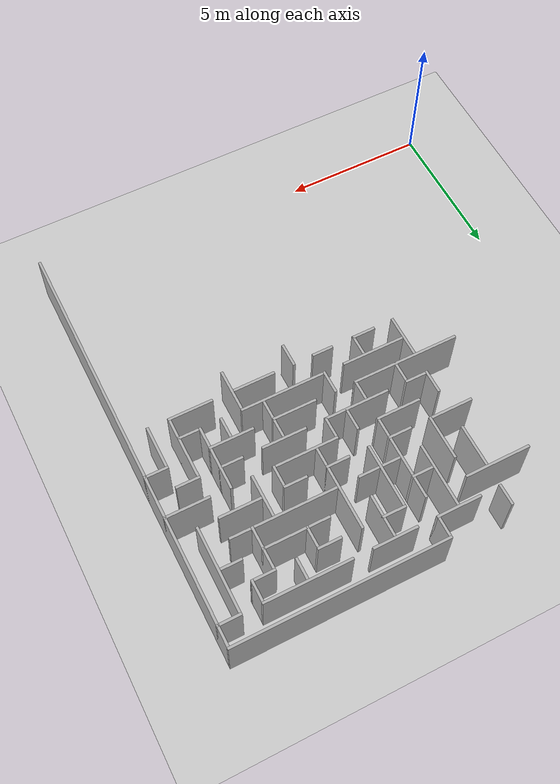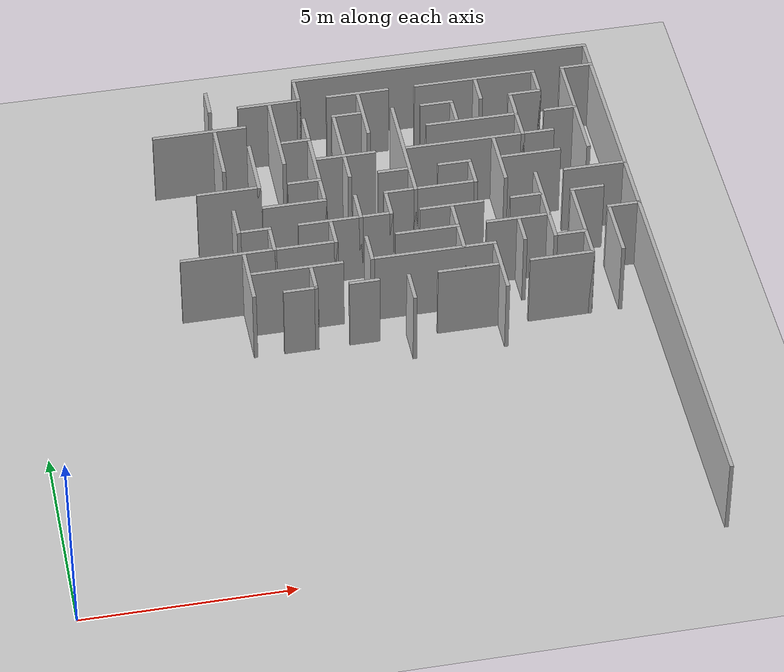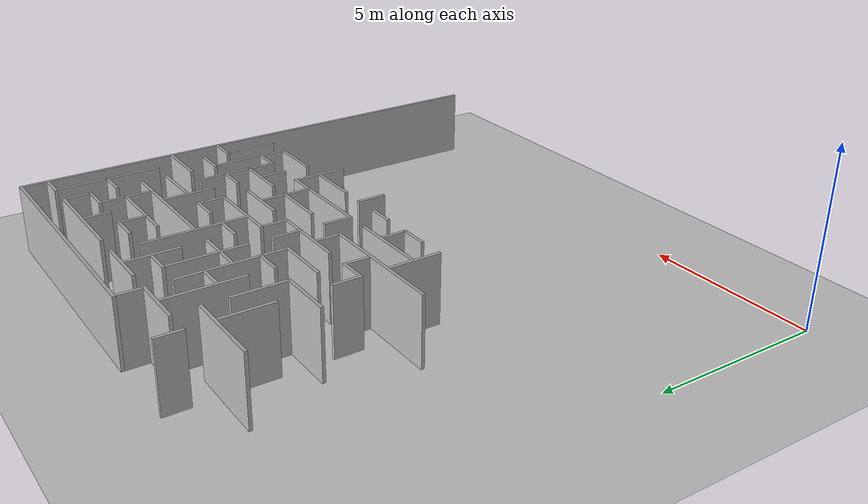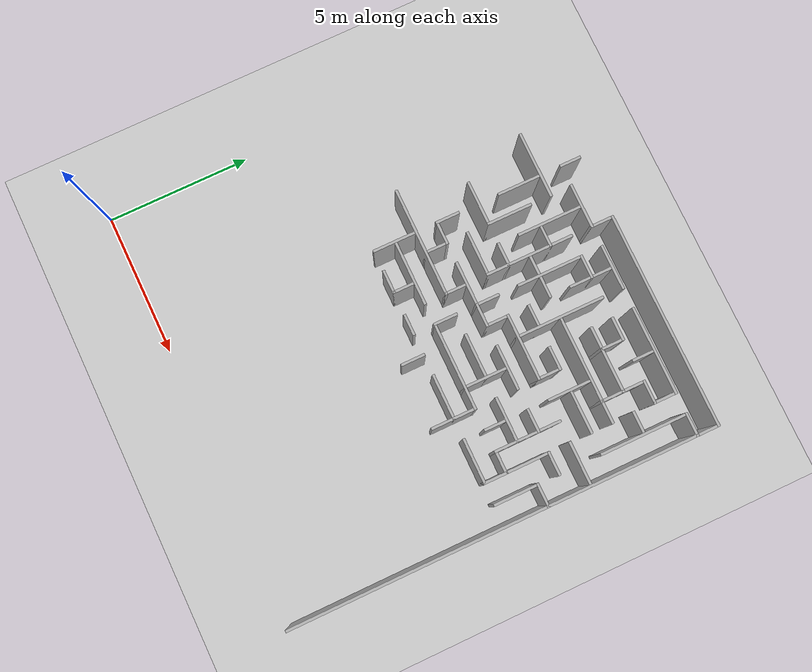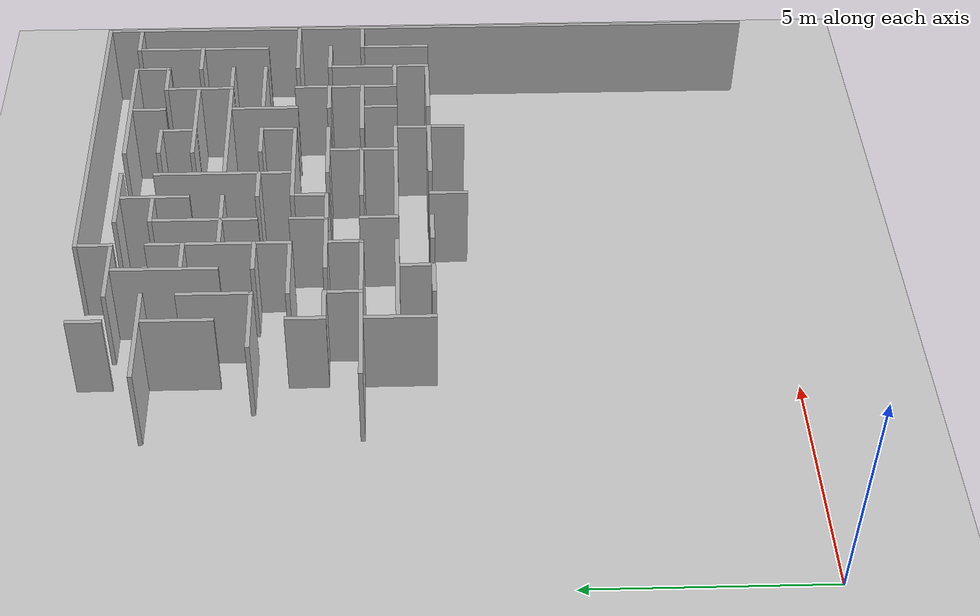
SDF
<sdf version="1.6">
 <world name="slam_world">
  <model name="ground_plane">
   <static>true</static>
   <link name="link">
    <collision name="collision">
     <geometry><plane><normal>0 0 1</normal><size>100 100</size></plane></geometry>
    </collision>
    <visual name="visual">
     <geometry><plane><normal>0 0 1</normal><size>100 100</size></plane></geometry>
     <material>
      <ambient>0.8 0.8 0.8 1</ambient>
      <diffuse>0.8 0.8 0.8 1</diffuse>
      <specular>0.8 0.8 0.8 1</specular>
     </material>
    </visual>
   </link>
  </model>
  <model name="wall_1">
   <static>true</static>
   <pose>11.203703703703704 14.907407407407408 1.0 0 0 0</pose>
   <link name="link">
    <collision name="collision">
     <geometry><box><size>7.500000000000001 0.0925925925925926 2.0</size></box></geometry>
    </collision>
    <visual name="visual">
     <geometry><box><size>7.500000000000001 0.0925925925925926 2.0</size></box></geometry>
     <material><ambient>0.5 0.5 0.5 1</ambient><diffuse>0.7 0.7 0.7 1</diffuse></material>
    </visual>
   </link>
  </model>
  <model name="wall_4">
   <static>true</static>
   <pose>5.277777777777779 14.490740740740742 1.0 0 0 0</pose>
   <link name="link">
    <collision name="collision">
     <geometry><box><size>0.0925925925925926 0.7407407407407408 2.0</size></box></geometry>
    </collision>
    <visual name="visual">
     <geometry><box><size>0.0925925925925926 0.7407407407407408 2.0</size></box></geometry>
     <material><ambient>0.5 0.5 0.5 1</ambient><diffuse>0.7 0.7 0.7 1</diffuse></material>
    </visual>
   </link>
  </model>
  <model name="wall_5">
   <static>true</static>
   <pose>7.500000000000001 14.490740740740742 1.0 0 0 0</pose>
   <link name="link">
    <collision name="collision">
     <geometry><box><size>0.0925925925925926 0.7407407407407408 2.0</size></box></geometry>
    </collision>
    <visual name="visual">
     <geometry><box><size>0.0925925925925926 0.7407407407407408 2.0</size></box></geometry>
     <material><ambient>0.5 0.5 0.5 1</ambient><diffuse>0.7 0.7 0.7 1</diffuse></material>
    </visual>
   </link>
  </model>
  <model name="wall_6">
   <static>true</static>
   <pose>14.907407407407408 7.453703703703704 1.0 0 0 0</pose>
   <link name="link">
    <collision name="collision">
     <geometry><box><size>0.0925925925925926 14.814814814814817 2.0</size></box></geometry>
    </collision>
    <visual name="visual">
     <geometry><box><size>0.0925925925925926 14.814814814814817 2.0</size></box></geometry>
     <material><ambient>0.5 0.5 0.5 1</ambient><diffuse>0.7 0.7 0.7 1</diffuse></material>
    </visual>
   </link>
  </model>
  <model name="wall_9">
   <static>true</static>
   <pose>6.7592592592592595 14.166666666666668 1.0 0 0 0</pose>
   <link name="link">
    <collision name="collision">
     <geometry><box><size>1.5740740740740742 0.0925925925925926 2.0</size></box></geometry>
    </collision>
    <visual name="visual">
     <geometry><box><size>1.5740740740740742 0.0925925925925926 2.0</size></box></geometry>
     <material><ambient>0.5 0.5 0.5 1</ambient><diffuse>0.7 0.7 0.7 1</diffuse></material>
    </visual>
   </link>
  </model>
  <model name="wall_10">
   <static>true</static>
   <pose>8.981481481481483 14.166666666666668 1.0 0 0 0</pose>
   <link name="link">
    <collision name="collision">
     <geometry><box><size>1.5740740740740742 0.0925925925925926 2.0</size></box></geometry>
    </collision>
    <visual name="visual">
     <geometry><box><size>1.5740740740740742 0.0925925925925926 2.0</size></box></geometry>
     <material><ambient>0.5 0.5 0.5 1</ambient><diffuse>0.7 0.7 0.7 1</diffuse></material>
    </visual>
   </link>
  </model>
  <model name="wall_11">
   <static>true</static>
   <pose>11.944444444444446 14.166666666666668 1.0 0 0 0</pose>
   <link name="link">
    <collision name="collision">
     <geometry><box><size>3.055555555555556 0.0925925925925926 2.0</size></box></geometry>
    </collision>
    <visual name="visual">
     <geometry><box><size>3.055555555555556 0.0925925925925926 2.0</size></box></geometry>
     <material><ambient>0.5 0.5 0.5 1</ambient><diffuse>0.7 0.7 0.7 1</diffuse></material>
    </visual>
   </link>
  </model>
  <model name="wall_12">
   <static>true</static>
   <pose>14.537037037037038 14.166666666666668 1.0 0 0 0</pose>
   <link name="link">
    <collision name="collision">
     <geometry><box><size>0.8333333333333334 0.0925925925925926 2.0</size></box></geometry>
    </collision>
    <visual name="visual">
     <geometry><box><size>0.8333333333333334 0.0925925925925926 2.0</size></box></geometry>
     <material><ambient>0.5 0.5 0.5 1</ambient><diffuse>0.7 0.7 0.7 1</diffuse></material>
    </visual>
   </link>
  </model>
  <model name="wall_15">
   <static>true</static>
   <pose>6.7592592592592595 13.009259259259261 1.0 0 0 0</pose>
   <link name="link">
    <collision name="collision">
     <geometry><box><size>0.0925925925925926 2.2222222222222223 2.0</size></box></geometry>
    </collision>
    <visual name="visual">
     <geometry><box><size>0.0925925925925926 2.2222222222222223 2.0</size></box></geometry>
     <material><ambient>0.5 0.5 0.5 1</ambient><diffuse>0.7 0.7 0.7 1</diffuse></material>
    </visual>
   </link>
  </model>
  <model name="wall_16">
   <static>true</static>
   <pose>8.981481481481483 13.379629629629632 1.0 0 0 0</pose>
   <link name="link">
    <collision name="collision">
     <geometry><box><size>0.0925925925925926 1.4814814814814816 2.0</size></box></geometry>
    </collision>
    <visual name="visual">
     <geometry><box><size>0.0925925925925926 1.4814814814814816 2.0</size></box></geometry>
     <material><ambient>0.5 0.5 0.5 1</ambient><diffuse>0.7 0.7 0.7 1</diffuse></material>
    </visual>
   </link>
  </model>
  <model name="wall_17">
   <static>true</static>
   <pose>11.944444444444446 13.750000000000002 1.0 0 0 0</pose>
   <link name="link">
    <collision name="collision">
     <geometry><box><size>0.0925925925925926 0.7407407407407408 2.0</size></box></geometry>
    </collision>
    <visual name="visual">
     <geometry><box><size>0.0925925925925926 0.7407407407407408 2.0</size></box></geometry>
     <material><ambient>0.5 0.5 0.5 1</ambient><diffuse>0.7 0.7 0.7 1</diffuse></material>
    </visual>
   </link>
  </model>
  <model name="wall_18">
   <static>true</static>
   <pose>13.425925925925927 13.750000000000002 1.0 0 0 0</pose>
   <link name="link">
    <collision name="collision">
     <geometry><box><size>0.0925925925925926 0.7407407407407408 2.0</size></box></geometry>
    </collision>
    <visual name="visual">
     <geometry><box><size>0.0925925925925926 0.7407407407407408 2.0</size></box></geometry>
     <material><ambient>0.5 0.5 0.5 1</ambient><diffuse>0.7 0.7 0.7 1</diffuse></material>
    </visual>
   </link>
  </model>
  <model name="wall_19">
   <static>true</static>
   <pose>14.166666666666668 12.63888888888889 1.0 0 0 0</pose>
   <link name="link">
    <collision name="collision">
     <geometry><box><size>0.0925925925925926 2.9629629629629632 2.0</size></box></geometry>
    </collision>
    <visual name="visual">
     <geometry><box><size>0.0925925925925926 2.9629629629629632 2.0</size></box></geometry>
     <material><ambient>0.5 0.5 0.5 1</ambient><diffuse>0.7 0.7 0.7 1</diffuse></material>
    </visual>
   </link>
  </model>
  <model name="wall_21">
   <static>true</static>
   <pose>4.907407407407407 13.425925925925927 1.0 0 0 0</pose>
   <link name="link">
    <collision name="collision">
     <geometry><box><size>2.314814814814815 0.0925925925925926 2.0</size></box></geometry>
    </collision>
    <visual name="visual">
     <geometry><box><size>2.314814814814815 0.0925925925925926 2.0</size></box></geometry>
     <material><ambient>0.5 0.5 0.5 1</ambient><diffuse>0.7 0.7 0.7 1</diffuse></material>
    </visual>
   </link>
  </model>
  <model name="wall_22">
   <static>true</static>
   <pose>7.500000000000001 11.944444444444446 1.0 0 0 0</pose>
   <link name="link">
    <collision name="collision">
     <geometry><box><size>0.0925925925925926 3.055555555555556 2.0</size></box></geometry>
    </collision>
    <visual name="visual">
     <geometry><box><size>0.0925925925925926 3.055555555555556 2.0</size></box></geometry>
     <material><ambient>0.5 0.5 0.5 1</ambient><diffuse>0.7 0.7 0.7 1</diffuse></material>
    </visual>
   </link>
  </model>
  <model name="wall_23">
   <static>true</static>
   <pose>8.611111111111112 13.425925925925927 1.0 0 0 0</pose>
   <link name="link">
    <collision name="collision">
     <geometry><box><size>0.8333333333333334 0.0925925925925926 2.0</size></box></geometry>
    </collision>
    <visual name="visual">
     <geometry><box><size>0.8333333333333334 0.0925925925925926 2.0</size></box></geometry>
     <material><ambient>0.5 0.5 0.5 1</ambient><diffuse>0.7 0.7 0.7 1</diffuse></material>
    </visual>
   </link>
  </model>
  <model name="wall_24">
   <static>true</static>
   <pose>9.722222222222223 11.944444444444446 1.0 0 0 0</pose>
   <link name="link">
    <collision name="collision">
     <geometry><box><size>0.0925925925925926 3.055555555555556 2.0</size></box></geometry>
    </collision>
    <visual name="visual">
     <geometry><box><size>0.0925925925925926 3.055555555555556 2.0</size></box></geometry>
     <material><ambient>0.5 0.5 0.5 1</ambient><diffuse>0.7 0.7 0.7 1</diffuse></material>
    </visual>
   </link>
  </model>
  <model name="wall_25">
   <static>true</static>
   <pose>10.833333333333334 13.425925925925927 1.0 0 0 0</pose>
   <link name="link">
    <collision name="collision">
     <geometry><box><size>0.8333333333333334 0.0925925925925926 2.0</size></box></geometry>
    </collision>
    <visual name="visual">
     <geometry><box><size>0.8333333333333334 0.0925925925925926 2.0</size></box></geometry>
     <material><ambient>0.5 0.5 0.5 1</ambient><diffuse>0.7 0.7 0.7 1</diffuse></material>
    </visual>
   </link>
  </model>
  <model name="wall_26">
   <static>true</static>
   <pose>13.055555555555557 13.425925925925927 1.0 0 0 0</pose>
   <link name="link">
    <collision name="collision">
     <geometry><box><size>0.8333333333333334 0.0925925925925926 2.0</size></box></geometry>
    </collision>
    <visual name="visual">
     <geometry><box><size>0.8333333333333334 0.0925925925925926 2.0</size></box></geometry>
     <material><ambient>0.5 0.5 0.5 1</ambient><diffuse>0.7 0.7 0.7 1</diffuse></material>
    </visual>
   </link>
  </model>
  <model name="wall_29">
   <static>true</static>
   <pose>5.277777777777779 12.63888888888889 1.0 0 0 0</pose>
   <link name="link">
    <collision name="collision">
     <geometry><box><size>0.0925925925925926 1.4814814814814816 2.0</size></box></geometry>
    </collision>
    <visual name="visual">
     <geometry><box><size>0.0925925925925926 1.4814814814814816 2.0</size></box></geometry>
     <material><ambient>0.5 0.5 0.5 1</ambient><diffuse>0.7 0.7 0.7 1</diffuse></material>
    </visual>
   </link>
  </model>
  <model name="wall_30">
   <static>true</static>
   <pose>8.240740740740742 12.268518518518519 1.0 0 0 0</pose>
   <link name="link">
    <collision name="collision">
     <geometry><box><size>0.0925925925925926 2.2222222222222223 2.0</size></box></geometry>
    </collision>
    <visual name="visual">
     <geometry><box><size>0.0925925925925926 2.2222222222222223 2.0</size></box></geometry>
     <material><ambient>0.5 0.5 0.5 1</ambient><diffuse>0.7 0.7 0.7 1</diffuse></material>
    </visual>
   </link>
  </model>
  <model name="wall_31">
   <static>true</static>
   <pose>11.203703703703704 13.009259259259261 1.0 0 0 0</pose>
   <link name="link">
    <collision name="collision">
     <geometry><box><size>0.0925925925925926 0.7407407407407408 2.0</size></box></geometry>
    </collision>
    <visual name="visual">
     <geometry><box><size>0.0925925925925926 0.7407407407407408 2.0</size></box></geometry>
     <material><ambient>0.5 0.5 0.5 1</ambient><diffuse>0.7 0.7 0.7 1</diffuse></material>
    </visual>
   </link>
  </model>
  <model name="wall_32">
   <static>true</static>
   <pose>12.685185185185187 12.63888888888889 1.0 0 0 0</pose>
   <link name="link">
    <collision name="collision">
     <geometry><box><size>0.0925925925925926 1.4814814814814816 2.0</size></box></geometry>
    </collision>
    <visual name="visual">
     <geometry><box><size>0.0925925925925926 1.4814814814814816 2.0</size></box></geometry>
     <material><ambient>0.5 0.5 0.5 1</ambient><diffuse>0.7 0.7 0.7 1</diffuse></material>
    </visual>
   </link>
  </model>
  <model name="wall_35">
   <static>true</static>
   <pose>6.018518518518519 11.944444444444446 1.0 0 0 0</pose>
   <link name="link">
    <collision name="collision">
     <geometry><box><size>0.0925925925925926 1.5740740740740742 2.0</size></box></geometry>
    </collision>
    <visual name="visual">
     <geometry><box><size>0.0925925925925926 1.5740740740740742 2.0</size></box></geometry>
     <material><ambient>0.5 0.5 0.5 1</ambient><diffuse>0.7 0.7 0.7 1</diffuse></material>
    </visual>
   </link>
  </model>
  <model name="wall_36">
   <static>true</static>
   <pose>7.1759259259259265 12.685185185185187 1.0 0 0 0</pose>
   <link name="link">
    <collision name="collision">
     <geometry><box><size>0.7407407407407408 0.0925925925925926 2.0</size></box></geometry>
    </collision>
    <visual name="visual">
     <geometry><box><size>0.7407407407407408 0.0925925925925926 2.0</size></box></geometry>
     <material><ambient>0.5 0.5 0.5 1</ambient><diffuse>0.7 0.7 0.7 1</diffuse></material>
    </visual>
   </link>
  </model>
  <model name="wall_37">
   <static>true</static>
   <pose>11.574074074074074 12.685185185185187 1.0 0 0 0</pose>
   <link name="link">
    <collision name="collision">
     <geometry><box><size>2.314814814814815 0.0925925925925926 2.0</size></box></geometry>
    </collision>
    <visual name="visual">
     <geometry><box><size>2.314814814814815 0.0925925925925926 2.0</size></box></geometry>
     <material><ambient>0.5 0.5 0.5 1</ambient><diffuse>0.7 0.7 0.7 1</diffuse></material>
    </visual>
   </link>
  </model>
  <model name="wall_38">
   <static>true</static>
   <pose>13.796296296296298 12.685185185185187 1.0 0 0 0</pose>
   <link name="link">
    <collision name="collision">
     <geometry><box><size>0.8333333333333334 0.0925925925925926 2.0</size></box></geometry>
    </collision>
    <visual name="visual">
     <geometry><box><size>0.8333333333333334 0.0925925925925926 2.0</size></box></geometry>
     <material><ambient>0.5 0.5 0.5 1</ambient><diffuse>0.7 0.7 0.7 1</diffuse></material>
    </visual>
   </link>
  </model>
  <model name="wall_42">
   <static>true</static>
   <pose>8.287037037037038 11.944444444444446 1.0 0 0 0</pose>
   <link name="link">
    <collision name="collision">
     <geometry><box><size>1.4814814814814816 0.0925925925925926 2.0</size></box></geometry>
    </collision>
    <visual name="visual">
     <geometry><box><size>1.4814814814814816 0.0925925925925926 2.0</size></box></geometry>
     <material><ambient>0.5 0.5 0.5 1</ambient><diffuse>0.7 0.7 0.7 1</diffuse></material>
    </visual>
   </link>
  </model>
  <model name="wall_43">
   <static>true</static>
   <pose>11.620370370370372 11.944444444444446 1.0 0 0 0</pose>
   <link name="link">
    <collision name="collision">
     <geometry><box><size>3.703703703703704 0.0925925925925926 2.0</size></box></geometry>
    </collision>
    <visual name="visual">
     <geometry><box><size>3.703703703703704 0.0925925925925926 2.0</size></box></geometry>
     <material><ambient>0.5 0.5 0.5 1</ambient><diffuse>0.7 0.7 0.7 1</diffuse></material>
    </visual>
   </link>
  </model>
  <model name="wall_45">
   <static>true</static>
   <pose>11.944444444444446 11.157407407407408 1.0 0 0 0</pose>
   <link name="link">
    <collision name="collision">
     <geometry><box><size>0.0925925925925926 1.4814814814814816 2.0</size></box></geometry>
    </collision>
    <visual name="visual">
     <geometry><box><size>0.0925925925925926 1.4814814814814816 2.0</size></box></geometry>
     <material><ambient>0.5 0.5 0.5 1</ambient><diffuse>0.7 0.7 0.7 1</diffuse></material>
    </visual>
   </link>
  </model>
  <model name="wall_48">
   <static>true</static>
   <pose>5.277777777777779 11.203703703703704 1.0 0 0 0</pose>
   <link name="link">
    <collision name="collision">
     <geometry><box><size>1.5740740740740742 0.0925925925925926 2.0</size></box></geometry>
    </collision>
    <visual name="visual">
     <geometry><box><size>1.5740740740740742 0.0925925925925926 2.0</size></box></geometry>
     <material><ambient>0.5 0.5 0.5 1</ambient><diffuse>0.7 0.7 0.7 1</diffuse></material>
    </visual>
   </link>
  </model>
  <model name="wall_49">
   <static>true</static>
   <pose>7.129629629629631 11.203703703703704 1.0 0 0 0</pose>
   <link name="link">
    <collision name="collision">
     <geometry><box><size>0.8333333333333334 0.0925925925925926 2.0</size></box></geometry>
    </collision>
    <visual name="visual">
     <geometry><box><size>0.8333333333333334 0.0925925925925926 2.0</size></box></geometry>
     <material><ambient>0.5 0.5 0.5 1</ambient><diffuse>0.7 0.7 0.7 1</diffuse></material>
    </visual>
   </link>
  </model>
  <model name="wall_50">
   <static>true</static>
   <pose>9.351851851851853 11.203703703703704 1.0 0 0 0</pose>
   <link name="link">
    <collision name="collision">
     <geometry><box><size>0.8333333333333334 0.0925925925925926 2.0</size></box></geometry>
    </collision>
    <visual name="visual">
     <geometry><box><size>0.8333333333333334 0.0925925925925926 2.0</size></box></geometry>
     <material><ambient>0.5 0.5 0.5 1</ambient><diffuse>0.7 0.7 0.7 1</diffuse></material>
    </visual>
   </link>
  </model>
  <model name="wall_51">
   <static>true</static>
   <pose>10.833333333333334 11.203703703703704 1.0 0 0 0</pose>
   <link name="link">
    <collision name="collision">
     <geometry><box><size>0.8333333333333334 0.0925925925925926 2.0</size></box></geometry>
    </collision>
    <visual name="visual">
     <geometry><box><size>0.8333333333333334 0.0925925925925926 2.0</size></box></geometry>
     <material><ambient>0.5 0.5 0.5 1</ambient><diffuse>0.7 0.7 0.7 1</diffuse></material>
    </visual>
   </link>
  </model>
  <model name="wall_52">
   <static>true</static>
   <pose>12.731481481481483 11.203703703703704 1.0 0 0 0</pose>
   <link name="link">
    <collision name="collision">
     <geometry><box><size>1.4814814814814816 0.0925925925925926 2.0</size></box></geometry>
    </collision>
    <visual name="visual">
     <geometry><box><size>1.4814814814814816 0.0925925925925926 2.0</size></box></geometry>
     <material><ambient>0.5 0.5 0.5 1</ambient><diffuse>0.7 0.7 0.7 1</diffuse></material>
    </visual>
   </link>
  </model>
  <model name="wall_54">
   <static>true</static>
   <pose>11.203703703703704 10.787037037037038 1.0 0 0 0</pose>
   <link name="link">
    <collision name="collision">
     <geometry><box><size>0.0925925925925926 0.7407407407407408 2.0</size></box></geometry>
    </collision>
    <visual name="visual">
     <geometry><box><size>0.0925925925925926 0.7407407407407408 2.0</size></box></geometry>
     <material><ambient>0.5 0.5 0.5 1</ambient><diffuse>0.7 0.7 0.7 1</diffuse></material>
    </visual>
   </link>
  </model>
  <model name="wall_57">
   <static>true</static>
   <pose>5.277777777777779 10.092592592592593 1.0 0 0 0</pose>
   <link name="link">
    <collision name="collision">
     <geometry><box><size>0.0925925925925926 0.8333333333333334 2.0</size></box></geometry>
    </collision>
    <visual name="visual">
     <geometry><box><size>0.0925925925925926 0.8333333333333334 2.0</size></box></geometry>
     <material><ambient>0.5 0.5 0.5 1</ambient><diffuse>0.7 0.7 0.7 1</diffuse></material>
    </visual>
   </link>
  </model>
  <model name="wall_58">
   <static>true</static>
   <pose>6.7592592592592595 10.462962962962964 1.0 0 0 0</pose>
   <link name="link">
    <collision name="collision">
     <geometry><box><size>1.5740740740740742 0.0925925925925926 2.0</size></box></geometry>
    </collision>
    <visual name="visual">
     <geometry><box><size>1.5740740740740742 0.0925925925925926 2.0</size></box></geometry>
     <material><ambient>0.5 0.5 0.5 1</ambient><diffuse>0.7 0.7 0.7 1</diffuse></material>
    </visual>
   </link>
  </model>
  <model name="wall_59">
   <static>true</static>
   <pose>8.240740740740742 10.092592592592593 1.0 0 0 0</pose>
   <link name="link">
    <collision name="collision">
     <geometry><box><size>0.0925925925925926 0.8333333333333334 2.0</size></box></geometry>
    </collision>
    <visual name="visual">
     <geometry><box><size>0.0925925925925926 0.8333333333333334 2.0</size></box></geometry>
     <material><ambient>0.5 0.5 0.5 1</ambient><diffuse>0.7 0.7 0.7 1</diffuse></material>
    </visual>
   </link>
  </model>
  <model name="wall_60">
   <static>true</static>
   <pose>10.092592592592593 10.462962962962964 1.0 0 0 0</pose>
   <link name="link">
    <collision name="collision">
     <geometry><box><size>2.314814814814815 0.0925925925925926 2.0</size></box></geometry>
    </collision>
    <visual name="visual">
     <geometry><box><size>2.314814814814815 0.0925925925925926 2.0</size></box></geometry>
     <material><ambient>0.5 0.5 0.5 1</ambient><diffuse>0.7 0.7 0.7 1</diffuse></material>
    </visual>
   </link>
  </model>
  <model name="wall_61">
   <static>true</static>
   <pose>12.685185185185187 9.351851851851853 1.0 0 0 0</pose>
   <link name="link">
    <collision name="collision">
     <geometry><box><size>0.0925925925925926 2.314814814814815 2.0</size></box></geometry>
    </collision>
    <visual name="visual">
     <geometry><box><size>0.0925925925925926 2.314814814814815 2.0</size></box></geometry>
     <material><ambient>0.5 0.5 0.5 1</ambient><diffuse>0.7 0.7 0.7 1</diffuse></material>
    </visual>
   </link>
  </model>
  <model name="wall_62">
   <static>true</static>
   <pose>14.166666666666668 10.462962962962964 1.0 0 0 0</pose>
   <link name="link">
    <collision name="collision">
     <geometry><box><size>1.5740740740740742 0.0925925925925926 2.0</size></box></geometry>
    </collision>
    <visual name="visual">
     <geometry><box><size>1.5740740740740742 0.0925925925925926 2.0</size></box></geometry>
     <material><ambient>0.5 0.5 0.5 1</ambient><diffuse>0.7 0.7 0.7 1</diffuse></material>
    </visual>
   </link>
  </model>
  <model name="wall_65">
   <static>true</static>
   <pose>8.981481481481483 10.046296296296298 1.0 0 0 0</pose>
   <link name="link">
    <collision name="collision">
     <geometry><box><size>0.0925925925925926 0.7407407407407408 2.0</size></box></geometry>
    </collision>
    <visual name="visual">
     <geometry><box><size>0.0925925925925926 0.7407407407407408 2.0</size></box></geometry>
     <material><ambient>0.5 0.5 0.5 1</ambient><diffuse>0.7 0.7 0.7 1</diffuse></material>
    </visual>
   </link>
  </model>
  <model name="wall_69">
   <static>true</static>
   <pose>5.694444444444445 9.722222222222223 1.0 0 0 0</pose>
   <link name="link">
    <collision name="collision">
     <geometry><box><size>0.7407407407407408 0.0925925925925926 2.0</size></box></geometry>
    </collision>
    <visual name="visual">
     <geometry><box><size>0.7407407407407408 0.0925925925925926 2.0</size></box></geometry>
     <material><ambient>0.5 0.5 0.5 1</ambient><diffuse>0.7 0.7 0.7 1</diffuse></material>
    </visual>
   </link>
  </model>
  <model name="wall_70">
   <static>true</static>
   <pose>7.870370370370371 9.722222222222223 1.0 0 0 0</pose>
   <link name="link">
    <collision name="collision">
     <geometry><box><size>2.314814814814815 0.0925925925925926 2.0</size></box></geometry>
    </collision>
    <visual name="visual">
     <geometry><box><size>2.314814814814815 0.0925925925925926 2.0</size></box></geometry>
     <material><ambient>0.5 0.5 0.5 1</ambient><diffuse>0.7 0.7 0.7 1</diffuse></material>
    </visual>
   </link>
  </model>
  <model name="wall_71">
   <static>true</static>
   <pose>10.462962962962964 9.722222222222223 1.0 0 0 0</pose>
   <link name="link">
    <collision name="collision">
     <geometry><box><size>1.5740740740740742 0.0925925925925926 2.0</size></box></geometry>
    </collision>
    <visual name="visual">
     <geometry><box><size>1.5740740740740742 0.0925925925925926 2.0</size></box></geometry>
     <material><ambient>0.5 0.5 0.5 1</ambient><diffuse>0.7 0.7 0.7 1</diffuse></material>
    </visual>
   </link>
  </model>
  <model name="wall_72">
   <static>true</static>
   <pose>12.314814814814817 9.722222222222223 1.0 0 0 0</pose>
   <link name="link">
    <collision name="collision">
     <geometry><box><size>0.8333333333333334 0.0925925925925926 2.0</size></box></geometry>
    </collision>
    <visual name="visual">
     <geometry><box><size>0.8333333333333334 0.0925925925925926 2.0</size></box></geometry>
     <material><ambient>0.5 0.5 0.5 1</ambient><diffuse>0.7 0.7 0.7 1</diffuse></material>
    </visual>
   </link>
  </model>
  <model name="wall_73">
   <static>true</static>
   <pose>13.796296296296298 9.722222222222223 1.0 0 0 0</pose>
   <link name="link">
    <collision name="collision">
     <geometry><box><size>0.8333333333333334 0.0925925925925926 2.0</size></box></geometry>
    </collision>
    <visual name="visual">
     <geometry><box><size>0.8333333333333334 0.0925925925925926 2.0</size></box></geometry>
     <material><ambient>0.5 0.5 0.5 1</ambient><diffuse>0.7 0.7 0.7 1</diffuse></material>
    </visual>
   </link>
  </model>
  <model name="wall_76">
   <static>true</static>
   <pose>6.018518518518519 9.305555555555557 1.0 0 0 0</pose>
   <link name="link">
    <collision name="collision">
     <geometry><box><size>0.0925925925925926 0.7407407407407408 2.0</size></box></geometry>
    </collision>
    <visual name="visual">
     <geometry><box><size>0.0925925925925926 0.7407407407407408 2.0</size></box></geometry>
     <material><ambient>0.5 0.5 0.5 1</ambient><diffuse>0.7 0.7 0.7 1</diffuse></material>
    </visual>
   </link>
  </model>
  <model name="wall_77">
   <static>true</static>
   <pose>7.500000000000001 9.305555555555557 1.0 0 0 0</pose>
   <link name="link">
    <collision name="collision">
     <geometry><box><size>0.0925925925925926 0.7407407407407408 2.0</size></box></geometry>
    </collision>
    <visual name="visual">
     <geometry><box><size>0.0925925925925926 0.7407407407407408 2.0</size></box></geometry>
     <material><ambient>0.5 0.5 0.5 1</ambient><diffuse>0.7 0.7 0.7 1</diffuse></material>
    </visual>
   </link>
  </model>
  <model name="wall_78">
   <static>true</static>
   <pose>10.462962962962964 8.935185185185187 1.0 0 0 0</pose>
   <link name="link">
    <collision name="collision">
     <geometry><box><size>0.0925925925925926 1.4814814814814816 2.0</size></box></geometry>
    </collision>
    <visual name="visual">
     <geometry><box><size>0.0925925925925926 1.4814814814814816 2.0</size></box></geometry>
     <material><ambient>0.5 0.5 0.5 1</ambient><diffuse>0.7 0.7 0.7 1</diffuse></material>
    </visual>
   </link>
  </model>
  <model name="wall_79">
   <static>true</static>
   <pose>13.425925925925927 8.564814814814815 1.0 0 0 0</pose>
   <link name="link">
    <collision name="collision">
     <geometry><box><size>0.0925925925925926 2.2222222222222223 2.0</size></box></geometry>
    </collision>
    <visual name="visual">
     <geometry><box><size>0.0925925925925926 2.2222222222222223 2.0</size></box></geometry>
     <material><ambient>0.5 0.5 0.5 1</ambient><diffuse>0.7 0.7 0.7 1</diffuse></material>
    </visual>
   </link>
  </model>
  <model name="wall_82">
   <static>true</static>
   <pose>5.648148148148149 8.981481481481483 1.0 0 0 0</pose>
   <link name="link">
    <collision name="collision">
     <geometry><box><size>3.7962962962962967 0.0925925925925926 2.0</size></box></geometry>
    </collision>
    <visual name="visual">
     <geometry><box><size>3.7962962962962967 0.0925925925925926 2.0</size></box></geometry>
     <material><ambient>0.5 0.5 0.5 1</ambient><diffuse>0.7 0.7 0.7 1</diffuse></material>
    </visual>
   </link>
  </model>
  <model name="wall_83">
   <static>true</static>
   <pose>8.240740740740742 8.611111111111112 1.0 0 0 0</pose>
   <link name="link">
    <collision name="collision">
     <geometry><box><size>0.0925925925925926 0.8333333333333334 2.0</size></box></geometry>
    </collision>
    <visual name="visual">
     <geometry><box><size>0.0925925925925926 0.8333333333333334 2.0</size></box></geometry>
     <material><ambient>0.5 0.5 0.5 1</ambient><diffuse>0.7 0.7 0.7 1</diffuse></material>
    </visual>
   </link>
  </model>
  <model name="wall_84">
   <static>true</static>
   <pose>9.722222222222223 8.981481481481483 1.0 0 0 0</pose>
   <link name="link">
    <collision name="collision">
     <geometry><box><size>1.5740740740740742 0.0925925925925926 2.0</size></box></geometry>
    </collision>
    <visual name="visual">
     <geometry><box><size>1.5740740740740742 0.0925925925925926 2.0</size></box></geometry>
     <material><ambient>0.5 0.5 0.5 1</ambient><diffuse>0.7 0.7 0.7 1</diffuse></material>
    </visual>
   </link>
  </model>
  <model name="wall_85">
   <static>true</static>
   <pose>11.944444444444446 8.981481481481483 1.0 0 0 0</pose>
   <link name="link">
    <collision name="collision">
     <geometry><box><size>1.5740740740740742 0.0925925925925926 2.0</size></box></geometry>
    </collision>
    <visual name="visual">
     <geometry><box><size>1.5740740740740742 0.0925925925925926 2.0</size></box></geometry>
     <material><ambient>0.5 0.5 0.5 1</ambient><diffuse>0.7 0.7 0.7 1</diffuse></material>
    </visual>
   </link>
  </model>
  <model name="wall_86">
   <static>true</static>
   <pose>14.537037037037038 8.981481481481483 1.0 0 0 0</pose>
   <link name="link">
    <collision name="collision">
     <geometry><box><size>0.8333333333333334 0.0925925925925926 2.0</size></box></geometry>
    </collision>
    <visual name="visual">
     <geometry><box><size>0.8333333333333334 0.0925925925925926 2.0</size></box></geometry>
     <material><ambient>0.5 0.5 0.5 1</ambient><diffuse>0.7 0.7 0.7 1</diffuse></material>
    </visual>
   </link>
  </model>
  <model name="wall_88">
   <static>true</static>
   <pose>5.277777777777779 8.194444444444445 1.0 0 0 0</pose>
   <link name="link">
    <collision name="collision">
     <geometry><box><size>0.0925925925925926 1.4814814814814816 2.0</size></box></geometry>
    </collision>
    <visual name="visual">
     <geometry><box><size>0.0925925925925926 1.4814814814814816 2.0</size></box></geometry>
     <material><ambient>0.5 0.5 0.5 1</ambient><diffuse>0.7 0.7 0.7 1</diffuse></material>
    </visual>
   </link>
  </model>
  <model name="wall_89">
   <static>true</static>
   <pose>11.944444444444446 8.564814814814815 1.0 0 0 0</pose>
   <link name="link">
    <collision name="collision">
     <geometry><box><size>0.0925925925925926 0.7407407407407408 2.0</size></box></geometry>
    </collision>
    <visual name="visual">
     <geometry><box><size>0.0925925925925926 0.7407407407407408 2.0</size></box></geometry>
     <material><ambient>0.5 0.5 0.5 1</ambient><diffuse>0.7 0.7 0.7 1</diffuse></material>
    </visual>
   </link>
  </model>
  <model name="wall_90">
   <static>true</static>
   <pose>14.166666666666668 8.194444444444445 1.0 0 0 0</pose>
   <link name="link">
    <collision name="collision">
     <geometry><box><size>0.0925925925925926 1.4814814814814816 2.0</size></box></geometry>
    </collision>
    <visual name="visual">
     <geometry><box><size>0.0925925925925926 1.4814814814814816 2.0</size></box></geometry>
     <material><ambient>0.5 0.5 0.5 1</ambient><diffuse>0.7 0.7 0.7 1</diffuse></material>
    </visual>
   </link>
  </model>
  <model name="wall_94">
   <static>true</static>
   <pose>6.435185185185186 8.240740740740742 1.0 0 0 0</pose>
   <link name="link">
    <collision name="collision">
     <geometry><box><size>2.2222222222222223 0.0925925925925926 2.0</size></box></geometry>
    </collision>
    <visual name="visual">
     <geometry><box><size>2.2222222222222223 0.0925925925925926 2.0</size></box></geometry>
     <material><ambient>0.5 0.5 0.5 1</ambient><diffuse>0.7 0.7 0.7 1</diffuse></material>
    </visual>
   </link>
  </model>
  <model name="wall_95">
   <static>true</static>
   <pose>9.768518518518519 8.240740740740742 1.0 0 0 0</pose>
   <link name="link">
    <collision name="collision">
     <geometry><box><size>2.9629629629629632 0.0925925925925926 2.0</size></box></geometry>
    </collision>
    <visual name="visual">
     <geometry><box><size>2.9629629629629632 0.0925925925925926 2.0</size></box></geometry>
     <material><ambient>0.5 0.5 0.5 1</ambient><diffuse>0.7 0.7 0.7 1</diffuse></material>
    </visual>
   </link>
  </model>
  <model name="wall_96">
   <static>true</static>
   <pose>13.101851851851853 8.240740740740742 1.0 0 0 0</pose>
   <link name="link">
    <collision name="collision">
     <geometry><box><size>0.7407407407407408 0.0925925925925926 2.0</size></box></geometry>
    </collision>
    <visual name="visual">
     <geometry><box><size>0.7407407407407408 0.0925925925925926 2.0</size></box></geometry>
     <material><ambient>0.5 0.5 0.5 1</ambient><diffuse>0.7 0.7 0.7 1</diffuse></material>
    </visual>
   </link>
  </model>
  <model name="wall_99">
   <static>true</static>
   <pose>6.7592592592592595 7.824074074074074 1.0 0 0 0</pose>
   <link name="link">
    <collision name="collision">
     <geometry><box><size>0.0925925925925926 0.7407407407407408 2.0</size></box></geometry>
    </collision>
    <visual name="visual">
     <geometry><box><size>0.0925925925925926 0.7407407407407408 2.0</size></box></geometry>
     <material><ambient>0.5 0.5 0.5 1</ambient><diffuse>0.7 0.7 0.7 1</diffuse></material>
    </visual>
   </link>
  </model>
  <model name="wall_101">
   <static>true</static>
   <pose>11.203703703703704 7.453703703703704 1.0 0 0 0</pose>
   <link name="link">
    <collision name="collision">
     <geometry><box><size>0.0925925925925926 1.4814814814814816 2.0</size></box></geometry>
    </collision>
    <visual name="visual">
     <geometry><box><size>0.0925925925925926 1.4814814814814816 2.0</size></box></geometry>
     <material><ambient>0.5 0.5 0.5 1</ambient><diffuse>0.7 0.7 0.7 1</diffuse></material>
    </visual>
   </link>
  </model>
  <model name="wall_103">
   <static>true</static>
   <pose>6.388888888888889 7.500000000000001 1.0 0 0 0</pose>
   <link name="link">
    <collision name="collision">
     <geometry><box><size>0.8333333333333334 0.0925925925925926 2.0</size></box></geometry>
    </collision>
    <visual name="visual">
     <geometry><box><size>0.8333333333333334 0.0925925925925926 2.0</size></box></geometry>
     <material><ambient>0.5 0.5 0.5 1</ambient><diffuse>0.7 0.7 0.7 1</diffuse></material>
    </visual>
   </link>
  </model>
  <model name="wall_104">
   <static>true</static>
   <pose>7.916666666666668 7.500000000000001 1.0 0 0 0</pose>
   <link name="link">
    <collision name="collision">
     <geometry><box><size>0.7407407407407408 0.0925925925925926 2.0</size></box></geometry>
    </collision>
    <visual name="visual">
     <geometry><box><size>0.7407407407407408 0.0925925925925926 2.0</size></box></geometry>
     <material><ambient>0.5 0.5 0.5 1</ambient><diffuse>0.7 0.7 0.7 1</diffuse></material>
    </visual>
   </link>
  </model>
  <model name="wall_105">
   <static>true</static>
   <pose>8.981481481481483 7.129629629629631 1.0 0 0 0</pose>
   <link name="link">
    <collision name="collision">
     <geometry><box><size>0.0925925925925926 0.8333333333333334 2.0</size></box></geometry>
    </collision>
    <visual name="visual">
     <geometry><box><size>0.0925925925925926 0.8333333333333334 2.0</size></box></geometry>
     <material><ambient>0.5 0.5 0.5 1</ambient><diffuse>0.7 0.7 0.7 1</diffuse></material>
    </visual>
   </link>
  </model>
  <model name="wall_106">
   <static>true</static>
   <pose>10.462962962962964 7.500000000000001 1.0 0 0 0</pose>
   <link name="link">
    <collision name="collision">
     <geometry><box><size>1.5740740740740742 0.0925925925925926 2.0</size></box></geometry>
    </collision>
    <visual name="visual">
     <geometry><box><size>1.5740740740740742 0.0925925925925926 2.0</size></box></geometry>
     <material><ambient>0.5 0.5 0.5 1</ambient><diffuse>0.7 0.7 0.7 1</diffuse></material>
    </visual>
   </link>
  </model>
  <model name="wall_107">
   <static>true</static>
   <pose>12.685185185185187 7.500000000000001 1.0 0 0 0</pose>
   <link name="link">
    <collision name="collision">
     <geometry><box><size>1.5740740740740742 0.0925925925925926 2.0</size></box></geometry>
    </collision>
    <visual name="visual">
     <geometry><box><size>1.5740740740740742 0.0925925925925926 2.0</size></box></geometry>
     <material><ambient>0.5 0.5 0.5 1</ambient><diffuse>0.7 0.7 0.7 1</diffuse></material>
    </visual>
   </link>
  </model>
 </world>
</sdf>
